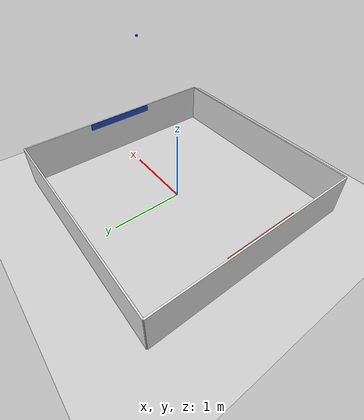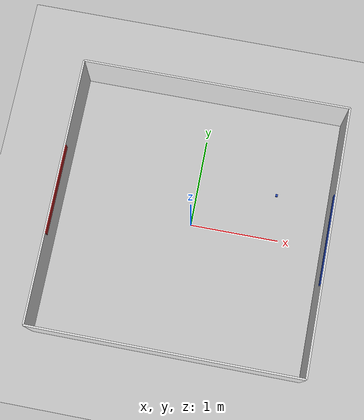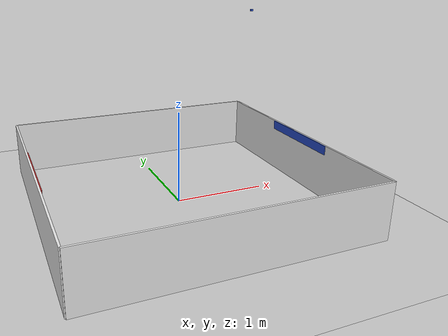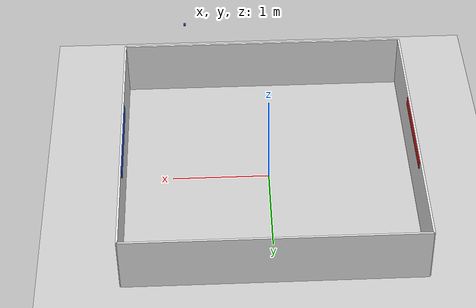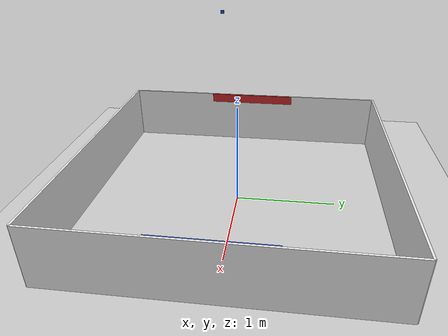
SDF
<sdf version='1.7'>
  <world name='default'>
    <light name='sun' type='directional'>
      <cast_shadows>1</cast_shadows>
      <pose>0 0 10 0 -0 0</pose>
      <diffuse>0.8 0.8 0.8 1</diffuse>
      <specular>0.2 0.2 0.2 1</specular>
      <attenuation>
        <range>1000</range>
        <constant>0.9</constant>
        <linear>0.01</linear>
        <quadratic>0.001</quadratic>
      </attenuation>
      <direction>-0.5 0.1 -0.9</direction>
      <spot>
        <inner_angle>0</inner_angle>
        <outer_angle>0</outer_angle>
        <falloff>0</falloff>
      </spot>
    </light>
    <model name='ground_plane'>
      <static>1</static>
      <link name='link'>
        <collision name='collision'>
          <geometry>
            <plane>
              <normal>0 0 1</normal>
              <size>100 100</size>
            </plane>
          </geometry>
          <surface>
            <contact>
              <collide_bitmask>65535</collide_bitmask>
              <ode/>
            </contact>
            <friction>
              <ode>
                <mu>100</mu>
                <mu2>50</mu2>
              </ode>
              <torsional>
                <ode/>
              </torsional>
            </friction>
            <bounce/>
          </surface>
          <max_contacts>10</max_contacts>
        </collision>
        <visual name='visual'>
          <cast_shadows>0</cast_shadows>
          <geometry>
            <plane>
              <normal>0 0 1</normal>
              <size>100 100</size>
            </plane>
          </geometry>
          <material>
            <script>
              <uri>file://media/materials/scripts/gazebo.material</uri>
              <name>Gazebo/Grey</name>
            </script>
          </material>
        </visual>
        <self_collide>0</self_collide>
        <enable_wind>0</enable_wind>
        <kinematic>0</kinematic>
      </link>
    </model>
    <gravity>0 0 -9.8</gravity>
    <magnetic_field>6e-06 2.3e-05 -4.2e-05</magnetic_field>
    <atmosphere type='adiabatic'/>
    <physics type='ode'>
      <max_step_size>0.001</max_step_size>
      <real_time_factor>1</real_time_factor>
      <real_time_update_rate>1000</real_time_update_rate>
    </physics>
    <scene>
      <ambient>0.4 0.4 0.4 1</ambient>
      <background>0.7 0.7 0.7 1</background>
      <shadows>1</shadows>
    </scene>
    <audio>
      <device>default</device>
    </audio>
    <wind/>
    <spherical_coordinates>
      <surface_model>EARTH_WGS84</surface_model>
      <latitude_deg>0</latitude_deg>
      <longitude_deg>0</longitude_deg>
      <elevation>0</elevation>
      <heading_deg>0</heading_deg>
    </spherical_coordinates>

    <model name='wall_1'>
      <static>1</static>
      <pose>0.0 -1.5 0.3 0 0 0</pose>
      <link name='link'>
        <collision name='collision'>
          <geometry>
            <box>
              <size>3 0.02 0.6</size>
            </box>
          </geometry>
          <max_contacts>10</max_contacts>
          <surface>
            <contact>
              <ode/>
            </contact>
            <bounce/>
            <friction>
              <torsional>
                <ode/>
              </torsional>
              <ode/>
            </friction>
          </surface>
        </collision>
        <visual name='visual'>
          <geometry>
            <box>
              <size>3 0.02 0.6</size>
            </box>
          </geometry>
          <material>
            <script>
              <name>Gazebo/White</name>
              <uri>file://media/materials/scripts/gazebo.material</uri>
            </script>
          </material>
        </visual>
        <self_collide>0</self_collide>
        <enable_wind>0</enable_wind>
        <kinematic>0</kinematic>
      </link>
    </model>
    <model name='wall_2'>
      <static>1</static>
      <pose>0.0 1.5 0.3 0 0 0</pose>
      <link name='link'>
        <collision name='collision'>
          <geometry>
            <box>
              <size>3 0.02 0.6</size>
            </box>
          </geometry>
          <max_contacts>10</max_contacts>
          <surface>
            <contact>
              <ode/>
            </contact>
            <bounce/>
            <friction>
              <torsional>
                <ode/>
              </torsional>
              <ode/>
            </friction>
          </surface>
        </collision>
        <visual name='visual'>
          <geometry>
            <box>
              <size>3 0.02 0.6</size>
            </box>
          </geometry>
          <material>
            <script>
              <name>Gazebo/White</name>
              <uri>file://media/materials/scripts/gazebo.material</uri>
            </script>
          </material>
        </visual>
        <self_collide>0</self_collide>
        <enable_wind>0</enable_wind>
        <kinematic>0</kinematic>
      </link>
    </model>
    <model name='wall_3'>
      <static>1</static>
      <pose>-1.5 0.0 0.3 0 0 0</pose>
      <link name='link'>
        <collision name='collision'>
          <geometry>
            <box>
              <size>0.02 3 0.6</size>
            </box>
          </geometry>
          <max_contacts>10</max_contacts>
          <surface>
            <contact>
              <ode/>
            </contact>
            <bounce/>
            <friction>
              <torsional>
                <ode/>
              </torsional>
              <ode/>
            </friction>
          </surface>
        </collision>
        <visual name='visual'>
          <geometry>
            <box>
              <size>0.02 3 0.6</size>
            </box>
          </geometry>
          <material>
            <script>
              <name>Gazebo/White</name>
              <uri>file://media/materials/scripts/gazebo.material</uri>
            </script>
          </material>
        </visual>
        <self_collide>0</self_collide>
        <enable_wind>0</enable_wind>
        <kinematic>0</kinematic>
      </link>
    </model>
    <model name='wall_4'>
      <static>1</static>
      <pose>1.5 0.0 0.3 0 0 0</pose>
      <link name='link'>
        <collision name='collision'>
          <geometry>
            <box>
              <size>0.02 3 0.6</size>
            </box>
          </geometry>
          <max_contacts>10</max_contacts>
          <surface>
            <contact>
              <ode/>
            </contact>
            <bounce/>
            <friction>
              <torsional>
                <ode/>
              </torsional>
              <ode/>
            </friction>
          </surface>
        </collision>
        <visual name='visual'>
          <geometry>
            <box>
              <size>0.02 3 0.6</size>
            </box>
          </geometry>
          <material>
            <script>
              <name>Gazebo/White</name>
              <uri>file://media/materials/scripts/gazebo.material</uri>
            </script>
          </material>
        </visual>
        <self_collide>0</self_collide>
        <enable_wind>0</enable_wind>
        <kinematic>0</kinematic>
      </link>
    </model>

    <model name='indicator_blue'>
      <static>1</static>
      <pose>1.485 0.0 0.55 0 0 0</pose>
      <link name='link'>
        <visual name='visual'>
          <geometry>
            <box>
              <size>0.01 1 0.1</size>
            </box>
          </geometry>
          <material>
            <script>
              <name>Gazebo/Blue</name>
              <uri>file://media/materials/scripts/gazebo.material</uri>
            </script>
          </material>
        </visual>
        <self_collide>0</self_collide>
        <enable_wind>0</enable_wind>
        <kinematic>0</kinematic>
      </link>
    </model>

    <model name='indicator_red'>
      <static>1</static>
      <pose>-1.485 0.0 0.55 0 0 0</pose>
      <link name='link'>
        <visual name='visual'>
          <geometry>
            <box>
              <size>0.01 1 0.1</size>
            </box>
          </geometry>
          <material>
            <script>
              <name>Gazebo/Red</name>
              <uri>file://media/materials/scripts/gazebo.material</uri>
            </script>
          </material>
        </visual>
        <self_collide>0</self_collide>
        <enable_wind>0</enable_wind>
        <kinematic>0</kinematic>
      </link>
    </model>

    <include>
			<uri>model://dice_simple</uri>
      <pose>.8 0 2 0 -0 0</pose>
		</include>

    <gui fullscreen='0'>
      <camera name='user_camera'>
        <pose>0 0 7.07862 3.14159 1.57079 3.14159</pose>
        <view_controller>orbit</view_controller>
        <projection_type>perspective</projection_type>
      </camera>
    </gui>
  </world>
</sdf>

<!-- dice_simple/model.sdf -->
<sdf version="1.5">
  <model name="dice_simple">
    <link name="link">
      <inertial>
        <pose>  0.0000000000e+00  0.0000000000e+00  0.0000000000e+00 0 0 0 </pose>
        <mass> 0.02 </mass>
        <inertia>
          <ixx>  3.3333332480e-03 </ixx>
          <ixy>  0.0000000000e+00 </ixy>
          <ixz>  0.0000000000e+00 </ixz>
          <iyy>  3.3333332480e-03 </iyy>
          <iyz>  0.0000000000e+00 </iyz>
          <izz>  3.3333332480e-03 </izz>
        </inertia>
      </inertial>
      <collision name="collision">
        <pose>  0.0000000000e+00  0.0000000000e+00  0.0000000000e+00 0 0 0 </pose>
        <geometry>
          <mesh>
            <uri>model://dice_simple/meshes/dice_simple.dae</uri>
          </mesh>
        </geometry>
        <surface>
          <friction>
            <ode>
              <mu>0.1</mu>
              <mu2>0.1</mu2>
            </ode>
          </friction>
        </surface>
      </collision>
      <visual name="visual">
        <pose>  0.0000000000e+00  0.0000000000e+00  0.0000000000e+00 0 0 0 </pose>
        <geometry>
          <mesh>
            <uri>model://dice_simple/meshes/dice_simple.dae</uri>
          </mesh>
        </geometry>
        <material>
          <script>
            <uri>file://media/materials/scripts/gazebo.material</uri>
            <name>Gazebo/Blue</name>
          </script>
        </material>
      </visual>
      <velocity_decay>
        <linear>0</linear>
        <angular>0.005</angular>
      </velocity_decay>
    </link>
  </model>
</sdf>
